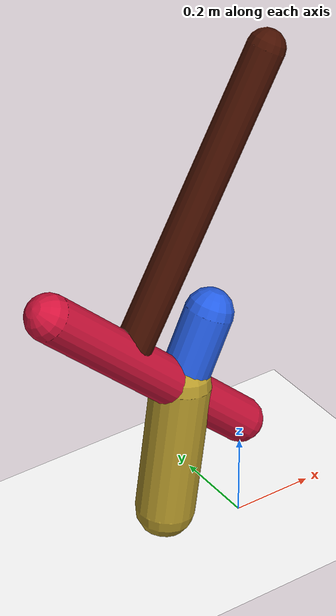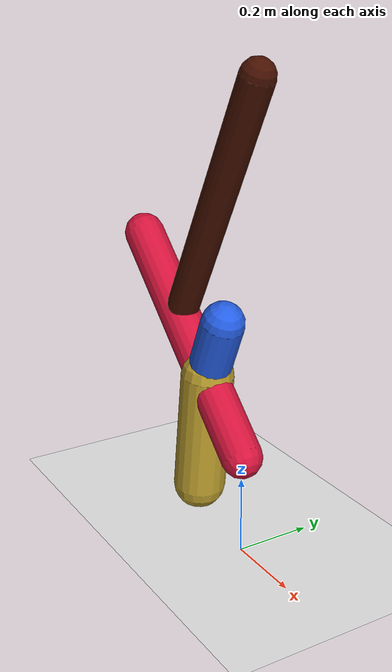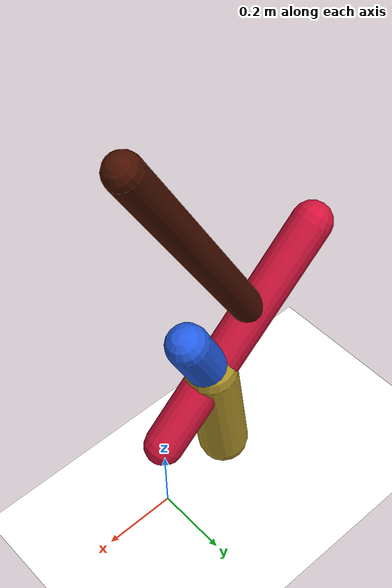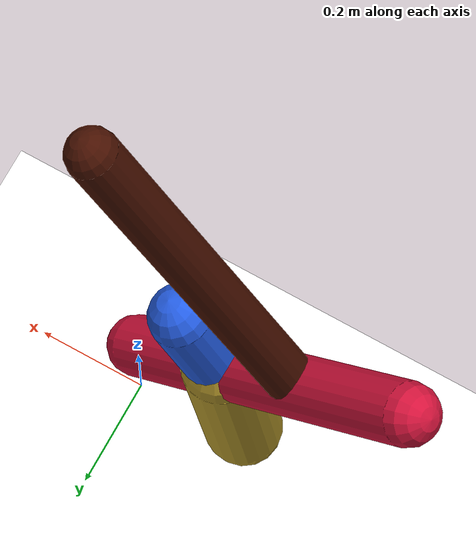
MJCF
<mujoco model="morphology">
  <option timestep="0.01"/>
  <default>
    <default class="/"/>
    <default class="0/"/>
    <default class="0/1/"/>
    <default class="0/1/2/"/>
    <default class="0/3/"/>
  </default>
  <asset>
    <texture name="texplane" type="2d" builtin="checker" rgb1="0.10000000000000001 0.20000000000000001 0.29999999999999999" rgb2="0.20000000000000001 0.29999999999999999 0.40000000000000002" width="300" height="300"/>
    <material name="MatPlane" class="/" texture="texplane" texrepeat="20 20" specular="1" shininess="1" reflectance="0.5"/>
  </asset>
  <worldbody>
    <light name="//unnamed_light_0" class="/" directional="true" pos="0 0 1.5" dir="0 0 -1.3" cutoff="100" exponent="1" diffuse="1 1 1" specular="0.10000000000000001 0.10000000000000001 0.10000000000000001"/>
    <geom name="ground" class="/" type="plane" size="15 15 0.5" material="MatPlane" rgba="1 1 1 1"/>
    <site name="body" class="/" size="9.9999999999999995e-07 9.9999999999999995e-07 9.9999999999999995e-07" pos="0 0 0.2632309705018997"/>
    <body pos="0 0 0.2632309705018997" name="0/">
      <joint name="0/rootx/" class="/" type="slide" axis="1 0 0" limited="false" stiffness="0" armature="0" damping="0"/>
      <joint name="0/rootz/" class="/" type="slide" axis="0 0 1" limited="false" stiffness="0" armature="0" damping="0"/>
      <joint name="0/rooty/" class="/" type="hinge" axis="0 1 0" limited="false" stiffness="0" armature="0" damping="0"/>
      <geom name="0/geom" class="0/" type="capsule" contype="1" conaffinity="1" condim="3" size="0.053636316609325586" rgba="0.81820649450250993 0.072267887476612946 0.22919740922937371 1" friction="0.59999999999999998 0.10000000000000001 0.10000000000000001" fromto="0 0 0 -0.49747200270753011 0 0.467346363151943"/>
      <site name="0/end0" class="0/" size="0.0050000000000000001" pos="-0.49747200270753011 0 0.467346363151943"/>
      <site name="0/attach1" class="0/" size="9.9999999999999995e-07 9.9999999999999995e-07 9.9999999999999995e-07" pos="-0.1678863068773363 0 0.15771953901949004"/>
      <body pos="-0.1678863068773363 0 0.15771953901949004" name="0/1/">
        <joint name="0/1/joint/" class="0/" type="hinge" axis="0 1 0" limited="true" range="-49.981650637860461 49.981650637860461"/>
        <geom name="0/1/geom" class="0/1/" type="capsule" contype="1" conaffinity="1" condim="3" size="0.056200489031614169" rgba="0.13975275120853514 0.3631661705782766 0.88705969781213578 1" friction="0.59999999999999998 0.10000000000000001 0.10000000000000001" fromto="0 0 0 0.077861104479312049 0 0.16937516140765807"/>
        <site name="0/1/end1" class="0/1/" size="0.0050000000000000001" pos="0.077861104479312049 0 0.16937516140765807"/>
        <site name="0/1/attach2" class="0/1/" size="9.9999999999999995e-07 9.9999999999999995e-07 9.9999999999999995e-07" pos="0.0038691339443845886 0 0.0084167209124565278"/>
        <body pos="0.0038691339443845886 0 0.0084167209124565278" name="0/1/2/">
          <joint name="0/1/2/joint/" class="0/1/" type="hinge" axis="0 1 0" limited="true" range="-67.521014221443295 67.521014221443295"/>
          <geom name="0/1/2/geom" class="0/1/2/" type="capsule" contype="1" conaffinity="1" condim="3" size="0.069093955320150779" rgba="0.71634774328903283 0.60293536794050839 0.16720125436664557 1" friction="0.59999999999999998 0.10000000000000001 0.10000000000000001" fromto="0 0 0 -0.044418902406580085 0 -0.32936723306797"/>
          <site name="0/1/2/end2" class="0/1/2/" size="0.0050000000000000001" pos="-0.044418902406580085 0 -0.32936723306797"/>
        </body>
      </body>
      <site name="0/attach3" class="0/" size="9.9999999999999995e-07 9.9999999999999995e-07 9.9999999999999995e-07" pos="-0.30429336920594297 0 0.28586613649744652"/>
      <body pos="-0.30429336920594297 0 0.28586613649744652" name="0/3/">
        <joint name="0/3/joint/" class="0/" type="hinge" axis="0 1 0" limited="true" range="-63.148237562649669 63.148237562649669"/>
        <geom name="0/3/geom" class="0/3/" type="capsule" contype="1" conaffinity="1" condim="3" size="0.043126212700953653" rgba="0.27095135548197002 0.059875240505321448 0.0021225590006362927 1" friction="0.59999999999999998 0.10000000000000001 0.10000000000000001" fromto="0 0 0 0.35319767235486088 0 0.64628909736488316"/>
        <site name="0/3/end3" class="0/3/" size="0.0050000000000000001" pos="0.35319767235486088 0 0.64628909736488316"/>
      </body>
      <camera name="0/side" class="0/" mode="trackcom" pos="0.40000000000000002 -4 0.20000000000000001" quat="0.70699999999999996 0.70699999999999996 0 0"/>
    </body>
  </worldbody>
  <actuator>
    <motor name="0/1/motor" class="0/1/" ctrllimited="true" ctrlrange="-1 1" gear="84" joint="0/1/joint/"/>
    <motor name="0/1/2/motor" class="0/1/2/" ctrllimited="true" ctrlrange="-1 1" gear="52" joint="0/1/2/joint/"/>
    <motor name="0/3/motor" class="0/3/" ctrllimited="true" ctrlrange="-1 1" gear="52" joint="0/3/joint/"/>
  </actuator>
  <sensor>
    <subtreelinvel name="velocity" body="0/"/>
  </sensor>
</mujoco>
